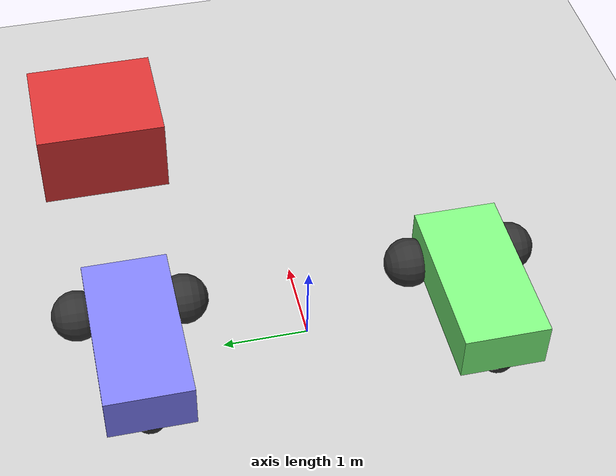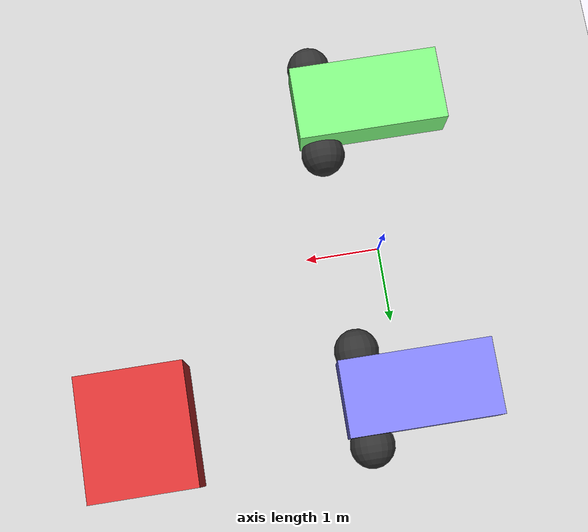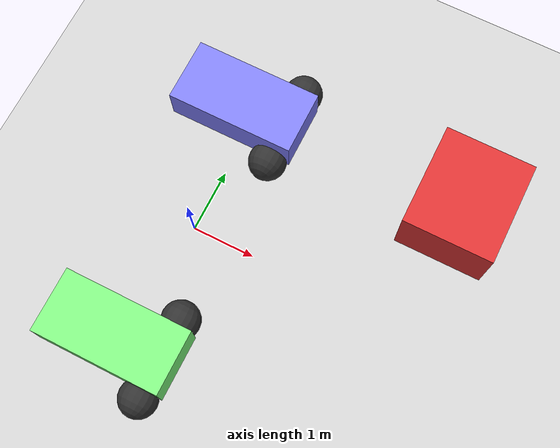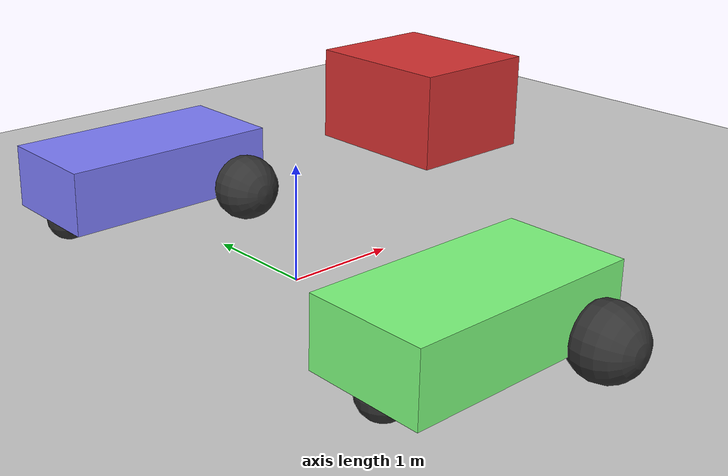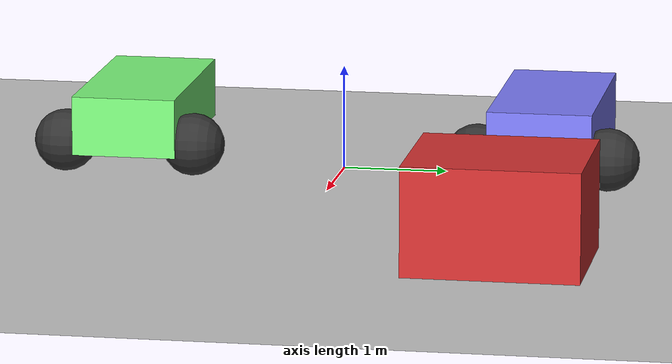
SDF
<?xml version="1.0" ?>
<sdf version="1.6">
  <world name="diff_drive">

    <physics name="1ms" type="ignored">
      <max_step_size>0.001</max_step_size>
      <real_time_factor>1.0</real_time_factor>
    </physics>
    <plugin
      filename="ignition-gazebo-physics-system"
      name="gz::sim::systems::Physics">
    </plugin>
    <plugin
      filename="ignition-gazebo-user-commands-system"
      name="gz::sim::systems::UserCommands">
    </plugin>
    <plugin
      filename="ignition-gazebo-scene-broadcaster-system"
      name="gz::sim::systems::SceneBroadcaster">
    </plugin>

    <light type="directional" name="sun">
      <cast_shadows>true</cast_shadows>
      <pose>0 0 10 0 0 0</pose>
      <diffuse>1 1 1 1</diffuse>
      <specular>0.5 0.5 0.5 1</specular>
      <attenuation>
        <range>1000</range>
        <constant>0.9</constant>
        <linear>0.01</linear>
        <quadratic>0.001</quadratic>
      </attenuation>
      <direction>-0.5 0.1 -0.9</direction>
    </light>

    <model name="ground_plane">
      <static>true</static>
      <link name="link">
        <collision name="collision">
          <geometry>
            <plane>
              <normal>0 0 1</normal>
              <size>100 100</size>
            </plane>
          </geometry>
        </collision>
        <visual name="visual">
          <geometry>
            <plane>
              <normal>0 0 1</normal>
              <size>100 100</size>
            </plane>
          </geometry>
          <material>
            <ambient>0.8 0.8 0.8 1</ambient>
            <diffuse>0.8 0.8 0.8 1</diffuse>
            <specular>0.8 0.8 0.8 1</specular>
          </material>
        </visual>
      </link>
    </model>

    <!-- EXP-013 static obstacle: blocks the direct blue-vehicle route -->
    <model name="exp013_static_obstacle">
      <static>true</static>
      <pose>3.5 2.0 0.5 0 0 0</pose>

      <link name="obstacle_link">
        <collision name="collision">
          <geometry>
            <box>
              <size>1.4 1.6 1.0</size>
            </box>
          </geometry>
        </collision>

        <visual name="visual">
          <geometry>
            <box>
              <size>1.4 1.6 1.0</size>
            </box>
          </geometry>

          <material>
            <ambient>0.85 0.20 0.20 1</ambient>
            <diffuse>0.85 0.20 0.20 1</diffuse>
            <specular>0.20 0.05 0.05 1</specular>
          </material>
        </visual>
      </link>
    </model>

    <model name='vehicle_blue'>
      <pose>0 2 0.325 0 -0 0</pose>

      <link name='chassis'>
        <pose>-0.151427 -0 0.175 0 -0 0</pose>
        <inertial>
          <mass>1.14395</mass>
          <inertia>
            <ixx>0.126164</ixx>
            <ixy>0</ixy>
            <ixz>0</ixz>
            <iyy>0.416519</iyy>
            <iyz>0</iyz>
            <izz>0.481014</izz>
          </inertia>
        </inertial>
        <visual name='visual'>
          <geometry>
            <box>
              <size>2.01142 1 0.568726</size>
            </box>
          </geometry>
          <material>
            <ambient>0.5 0.5 1.0 1</ambient>
            <diffuse>0.5 0.5 1.0 1</diffuse>
            <specular>0.0 0.0 1.0 1</specular>
          </material>
        </visual>
        <collision name='collision'>
          <geometry>
            <box>
              <size>2.01142 1 0.568726</size>
            </box>
          </geometry>
        </collision>
      </link>

      <link name='left_wheel'>
        <pose>0.554283 0.625029 -0.025 -1.5707 0 0</pose>
        <inertial>
          <mass>2</mass>
          <inertia>
            <ixx>0.145833</ixx>
            <ixy>0</ixy>
            <ixz>0</ixz>
            <iyy>0.145833</iyy>
            <iyz>0</iyz>
            <izz>0.125</izz>
          </inertia>
        </inertial>
        <visual name='visual'>
          <geometry>
            <sphere>
              <radius>0.3</radius>
            </sphere>
          </geometry>
          <material>
            <ambient>0.2 0.2 0.2 1</ambient>
            <diffuse>0.2 0.2 0.2 1</diffuse>
            <specular>0.2 0.2 0.2 1</specular>
          </material>
        </visual>
        <collision name='collision'>
          <geometry>
            <sphere>
              <radius>0.3</radius>
            </sphere>
          </geometry>
        </collision>
      </link>

      <link name='right_wheel'>
        <pose>0.554282 -0.625029 -0.025 -1.5707 0 0</pose>
        <inertial>
          <mass>2</mass>
          <inertia>
            <ixx>0.145833</ixx>
            <ixy>0</ixy>
            <ixz>0</ixz>
            <iyy>0.145833</iyy>
            <iyz>0</iyz>
            <izz>0.125</izz>
          </inertia>
        </inertial>
        <visual name='visual'>
          <geometry>
            <sphere>
              <radius>0.3</radius>
            </sphere>
          </geometry>
          <material>
            <ambient>0.2 0.2 0.2 1</ambient>
            <diffuse>0.2 0.2 0.2 1</diffuse>
            <specular>0.2 0.2 0.2 1</specular>
          </material>
        </visual>
        <collision name='collision'>
          <geometry>
            <sphere>
              <radius>0.3</radius>
            </sphere>
          </geometry>
        </collision>
      </link>

      <link name='caster'>
        <pose>-0.957138 -0 -0.125 0 -0 0</pose>
        <inertial>
          <mass>1</mass>
          <inertia>
            <ixx>0.1</ixx>
            <ixy>0</ixy>
            <ixz>0</ixz>
            <iyy>0.1</iyy>
            <iyz>0</iyz>
            <izz>0.1</izz>
          </inertia>
        </inertial>
        <visual name='visual'>
          <geometry>
            <sphere>
              <radius>0.2</radius>
            </sphere>
          </geometry>
          <material>
            <ambient>0.2 0.2 0.2 1</ambient>
            <diffuse>0.2 0.2 0.2 1</diffuse>
            <specular>0.2 0.2 0.2 1</specular>
          </material>
        </visual>
        <collision name='collision'>
          <geometry>
            <sphere>
              <radius>0.2</radius>
            </sphere>
          </geometry>
        </collision>
      </link>

      <joint name='left_wheel_joint' type='revolute'>
        <parent>chassis</parent>
        <child>left_wheel</child>
        <axis>
          <xyz>0 0 1</xyz>
          <limit>
            <lower>-1.79769e+308</lower>
            <upper>1.79769e+308</upper>
          </limit>
        </axis>
      </joint>

      <joint name='right_wheel_joint' type='revolute'>
        <parent>chassis</parent>
        <child>right_wheel</child>
        <axis>
          <xyz>0 0 1</xyz>
          <limit>
            <lower>-1.79769e+308</lower>
            <upper>1.79769e+308</upper>
          </limit>
        </axis>
      </joint>

      <joint name='caster_wheel' type='ball'>
        <parent>chassis</parent>
        <child>caster</child>
      </joint>

      <plugin
        filename="ignition-gazebo-diff-drive-system"
        name="gz::sim::systems::DiffDrive">
        <left_joint>left_wheel_joint</left_joint>
        <right_joint>right_wheel_joint</right_joint>
        <wheel_separation>1.25</wheel_separation>
        <wheel_radius>0.3</wheel_radius>
        <odom_publish_frequency>1</odom_publish_frequency>
        <max_linear_acceleration>1</max_linear_acceleration>
        <min_linear_acceleration>-1</min_linear_acceleration>
        <max_angular_acceleration>2</max_angular_acceleration>
        <min_angular_acceleration>-2</min_angular_acceleration>
        <max_linear_velocity>0.5</max_linear_velocity>
        <min_linear_velocity>-0.5</min_linear_velocity>
        <max_angular_velocity>1</max_angular_velocity>
        <min_angular_velocity>-1</min_angular_velocity>
      </plugin>

    </model>

    <model name='vehicle_green'>
      <pose>0 -2 0.325 0 -0 0</pose>

      <link name='chassis'>
        <pose>-0.151427 -0 0.175 0 -0 0</pose>
        <inertial>
          <mass>1.14395</mass>
          <inertia>
            <ixx>0.126164</ixx>
            <ixy>0</ixy>
            <ixz>0</ixz>
            <iyy>0.416519</iyy>
            <iyz>0</iyz>
            <izz>0.481014</izz>
          </inertia>
        </inertial>
        <visual name='visual'>
          <geometry>
            <box>
              <size>2.01142 1 0.568726</size>
            </box>
          </geometry>
          <material>
            <ambient>0.5 1.0 0.5 1</ambient>
            <diffuse>0.5 1.0 0.5 1</diffuse>
            <specular>0.0 1.0 0.0 1</specular>
          </material>
        </visual>
        <collision name='collision'>
          <geometry>
            <box>
              <size>2.01142 1 0.568726</size>
            </box>
          </geometry>
        </collision>
      </link>

      <link name='left_wheel'>
        <pose>0.554283 0.625029 -0.025 -1.5707 0 0</pose>
        <inertial>
          <mass>2</mass>
          <inertia>
            <ixx>0.145833</ixx>
            <ixy>0</ixy>
            <ixz>0</ixz>
            <iyy>0.145833</iyy>
            <iyz>0</iyz>
            <izz>0.125</izz>
          </inertia>
        </inertial>
        <visual name='visual'>
          <geometry>
            <sphere>
              <radius>0.3</radius>
            </sphere>
          </geometry>
          <material>
            <ambient>0.2 0.2 0.2 1</ambient>
            <diffuse>0.2 0.2 0.2 1</diffuse>
            <specular>0.2 0.2 0.2 1</specular>
          </material>
        </visual>
        <collision name='collision'>
          <geometry>
            <sphere>
              <radius>0.3</radius>
            </sphere>
          </geometry>
        </collision>
      </link>

      <link name='right_wheel'>
        <pose>0.554282 -0.625029 -0.025 -1.5707 0 0</pose>
        <inertial>
          <mass>2</mass>
          <inertia>
            <ixx>0.145833</ixx>
            <ixy>0</ixy>
            <ixz>0</ixz>
            <iyy>0.145833</iyy>
            <iyz>0</iyz>
            <izz>0.125</izz>
          </inertia>
        </inertial>
        <visual name='visual'>
          <geometry>
            <sphere>
              <radius>0.3</radius>
            </sphere>
          </geometry>
          <material>
            <ambient>0.2 0.2 0.2 1</ambient>
            <diffuse>0.2 0.2 0.2 1</diffuse>
            <specular>0.2 0.2 0.2 1</specular>
          </material>
        </visual>
        <collision name='collision'>
          <geometry>
            <sphere>
              <radius>0.3</radius>
            </sphere>
          </geometry>
        </collision>
      </link>

      <link name='caster'>
        <pose>-0.957138 -0 -0.125 0 -0 0</pose>
        <inertial>
          <mass>1</mass>
          <inertia>
            <ixx>0.1</ixx>
            <ixy>0</ixy>
            <ixz>0</ixz>
            <iyy>0.1</iyy>
            <iyz>0</iyz>
            <izz>0.1</izz>
          </inertia>
        </inertial>
        <visual name='visual'>
          <geometry>
            <sphere>
              <radius>0.2</radius>
            </sphere>
          </geometry>
          <material>
            <ambient>0.2 0.2 0.2 1</ambient>
            <diffuse>0.2 0.2 0.2 1</diffuse>
            <specular>0.2 0.2 0.2 1</specular>
          </material>
        </visual>
        <collision name='collision'>
          <geometry>
            <sphere>
              <radius>0.2</radius>
            </sphere>
          </geometry>
        </collision>
      </link>

      <joint name='left_wheel_joint' type='revolute'>
        <parent>chassis</parent>
        <child>left_wheel</child>
        <axis>
          <xyz>0 0 1</xyz>
          <limit>
            <lower>-1.79769e+308</lower>
            <upper>1.79769e+308</upper>
          </limit>
        </axis>
      </joint>

      <joint name='right_wheel_joint' type='revolute'>
        <parent>chassis</parent>
        <child>right_wheel</child>
        <axis>
          <xyz>0 0 1</xyz>
          <limit>
            <lower>-1.79769e+308</lower>
            <upper>1.79769e+308</upper>
          </limit>
        </axis>
      </joint>

      <joint name='caster_wheel' type='ball'>
        <parent>chassis</parent>
        <child>caster</child>
      </joint>

      <plugin
        filename="ignition-gazebo-diff-drive-system"
        name="gz::sim::systems::DiffDrive">
        <left_joint>left_wheel_joint</left_joint>
        <right_joint>right_wheel_joint</right_joint>
        <wheel_separation>1.25</wheel_separation>
        <wheel_radius>0.3</wheel_radius>
        <max_linear_acceleration>1</max_linear_acceleration>
        <min_linear_acceleration>-1</min_linear_acceleration>
        <max_angular_acceleration>2</max_angular_acceleration>
        <min_angular_acceleration>-2</min_angular_acceleration>
        <max_linear_velocity>0.5</max_linear_velocity>
        <min_linear_velocity>-0.5</min_linear_velocity>
        <max_angular_velocity>1</max_angular_velocity>
        <min_angular_velocity>-1</min_angular_velocity>
      </plugin>

    </model>

  </world>
</sdf>
